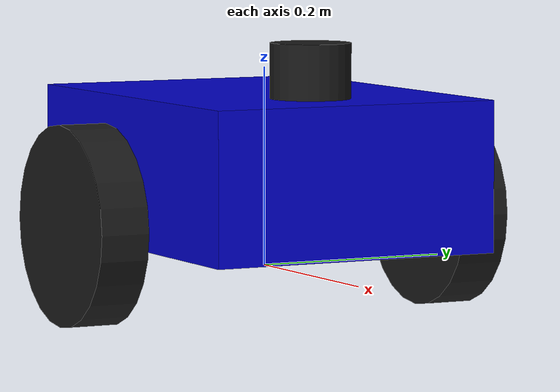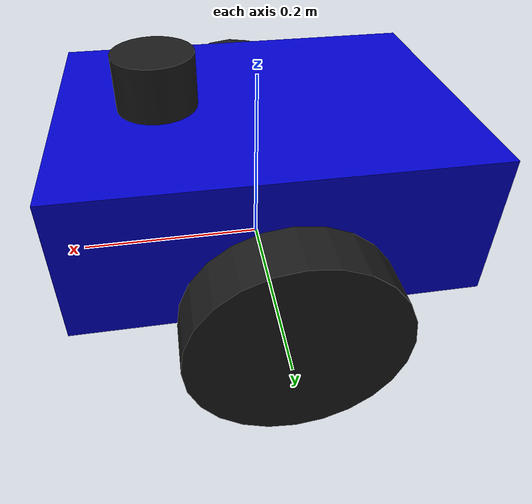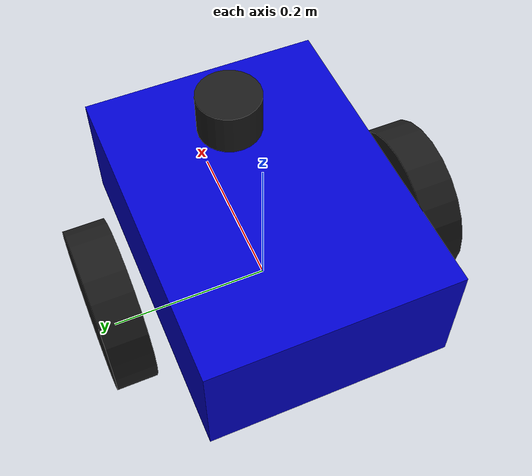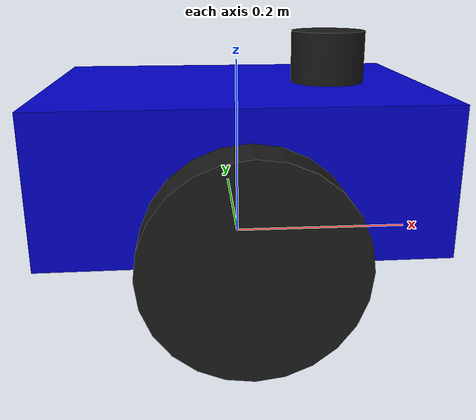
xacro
<?xml version="1.0"?>
<robot name="nero" xmlns:xacro="http://ros.org/wiki/xacro">

  <link name="base_footprint"/>

  <link name="base_link">
    <visual>
      <geometry><box size="0.4 0.3 0.15"/></geometry>
      <material name="blue"><color rgba="0 0 0.8 1"/></material>
    </visual>
    <collision>
      <geometry><box size="0.4 0.3 0.15"/></geometry>
    </collision>
    <inertial>
      <mass value="10.0"/>
      <inertia ixx="0.1" ixy="0" ixz="0" iyy="0.1" iyz="0" izz="0.1"/>
    </inertial>
  </link>

  <joint name="base_joint" type="fixed">
    <parent link="base_footprint"/>
    <child link="base_link"/>
    <origin xyz="0 0 0.1" rpy="0 0 0"/>
  </joint>

  <!-- Differential Drive Wheels -->
  <xacro:macro name="nero_wheel" params="prefix y_offset">
    <link name="${prefix}_wheel_link">
      <visual>
        <origin xyz="0 0 0" rpy="1.5708 0 0"/>
        <geometry><cylinder radius="0.1" length="0.05"/></geometry>
        <material name="black"><color rgba="0.1 0.1 0.1 1"/></material>
      </visual>
      <collision>
        <origin xyz="0 0 0" rpy="1.5708 0 0"/>
        <geometry><cylinder radius="0.1" length="0.05"/></geometry>
      </collision>
      <inertial>
        <mass value="1.0"/>
        <inertia ixx="0.01" ixy="0" ixz="0" iyy="0.01" iyz="0" izz="0.01"/>
      </inertial>
    </link>
    <joint name="${prefix}_wheel_joint" type="continuous">
      <parent link="base_link"/>
      <child link="${prefix}_wheel_link"/>
      <origin xyz="0 ${y_offset} -0.05" rpy="0 0 0"/>
      <axis xyz="0 1 0"/>
    </joint>
  </xacro:macro>

  <xacro:nero_wheel prefix="left" y_offset="0.2"/>
  <xacro:nero_wheel prefix="right" y_offset="-0.2"/>

  <!-- Caster Wheel -->
  <link name="caster_link">
    <visual>
      <geometry><sphere radius="0.05"/></geometry>
      <material name="grey"><color rgba="0.5 0.5 0.5 1"/></material>
    </visual>
    <collision>
      <geometry><sphere radius="0.05"/></geometry>
    </collision>
    <inertial>
      <mass value="0.5"/>
      <inertia ixx="0.01" ixy="0" ixz="0" iyy="0.01" iyz="0" izz="0.01"/>
    </inertial>
  </link>
  <joint name="caster_joint" type="fixed">
    <parent link="base_link"/>
    <child link="caster_link"/>
    <origin xyz="-0.15 0 -0.05" rpy="0 0 0"/>
  </joint>

  <!-- Lidar -->
  <link name="lidar_link">
    <visual>
      <geometry><cylinder radius="0.04" length="0.06"/></geometry>
      <material name="black"/>
    </visual>
  </link>
  <joint name="lidar_joint" type="fixed">
    <parent link="base_link"/>
    <child link="lidar_link"/>
    <origin xyz="0.1 0 0.1" rpy="0 0 0"/>
  </joint>

  <!-- Ignition Gazebo Plugins -->
  <gazebo>
    <plugin filename="libignition-gazebo-diff-drive-system.so" name="ignition::gazebo::systems::DiffDrive">
      <left_joint>left_wheel_joint</left_joint>
      <right_joint>right_wheel_joint</right_joint>
      <wheel_separation>0.4</wheel_separation>
      <wheel_radius>0.1</wheel_radius>
      <odom_publish_frequency>50</odom_publish_frequency>
      <topic>cmd_vel</topic>
      <odom_topic>odom</odom_topic>
      <frame_id>odom</frame_id>
      <child_frame_id>base_footprint</child_frame_id>
    </plugin>
  </gazebo>

  <gazebo reference="lidar_link">
    <sensor type="gpu_lidar" name="nero_lidar">
      <update_rate>10</update_rate>
      <topic>scan</topic>
      <gz_frame_id>lidar_link</gz_frame_id>
      <lidar>
        <scan>
          <horizontal>
            <samples>360</samples>
            <resolution>1</resolution>
            <min_angle>-3.14159</min_angle>
            <max_angle>3.14159</max_angle>
          </horizontal>
        </scan>
        <range>
          <min>0.1</min>
          <max>12.0</max>
          <resolution>0.01</resolution>
        </range>
      </lidar>
      <always_on>1</always_on>
      <visualize>false</visualize>
    </sensor>
  </gazebo>
</robot>
